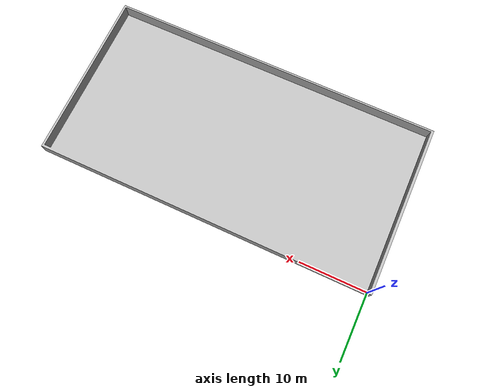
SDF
<?xml version="1.0"?>
<sdf version="1.7">
	<model name="pool">
		<static>true</static>

		<link name="base_link">
			<inertial>
				<pose>0 0 0 0 0 0</pose>
				<mass>1.0</mass>
				<inertia>
					<ixx>1.0</ixx>
					<ixy>0.0</ixy>
					<ixz>0.0</ixz>
					<iyy>1.0</iyy>
					<iyz>0.0</iyz>
					<izz>1.0</izz>
				</inertia>
			</inertial>

			<visual name="visual_mesh">
				<pose>0 0 0 0 0 0</pose>
				<geometry>
					<mesh>
						<scale>1 1 1</scale>
						<uri>model://pool/meshes/pool.obj</uri>
					</mesh>
				</geometry>
			</visual>

			<collision name="hitbox">
				<pose>0 0 0 0 0 0</pose>
				<geometry>
					<mesh>
						<scale>1 1 1</scale>
						<uri>model://pool/meshes/pool.obj</uri>
					</mesh>
				</geometry>
			</collision>

			<material>
				<ambient>0.2 0.2 0.2 1</ambient>
				<diffuse>0.8 0.8 0.8 1</diffuse>
				<specular>0.1 0.1 0.1 1</specular>
				<emissive>0 0 0 1</emissive>
			</material>

		</link>

	</model>
</sdf>
